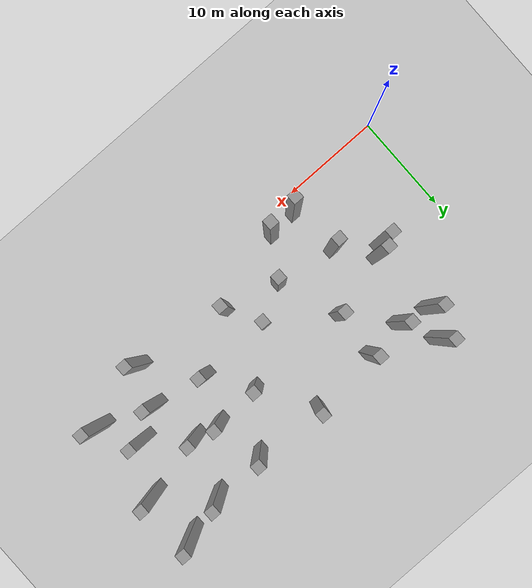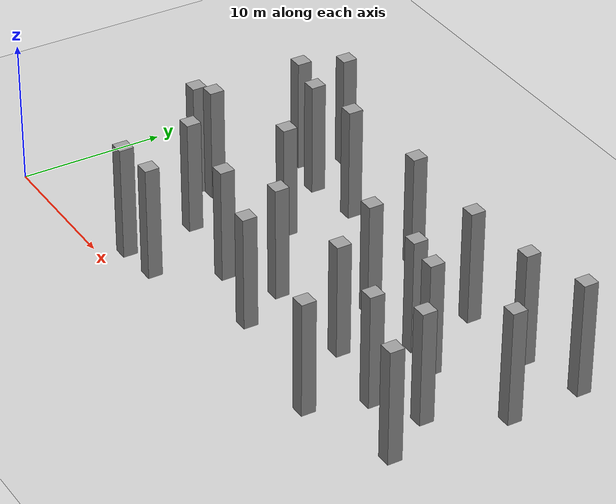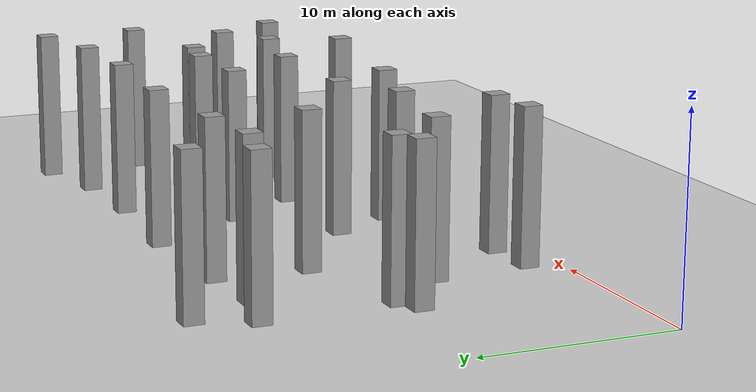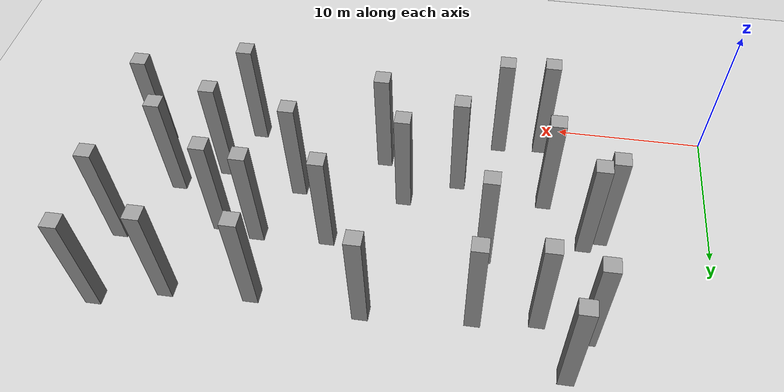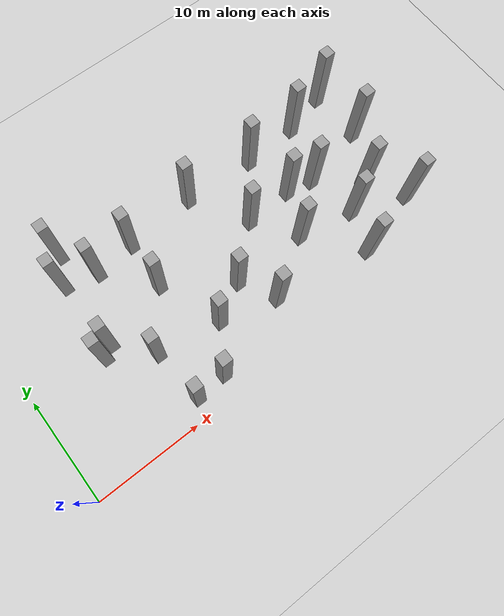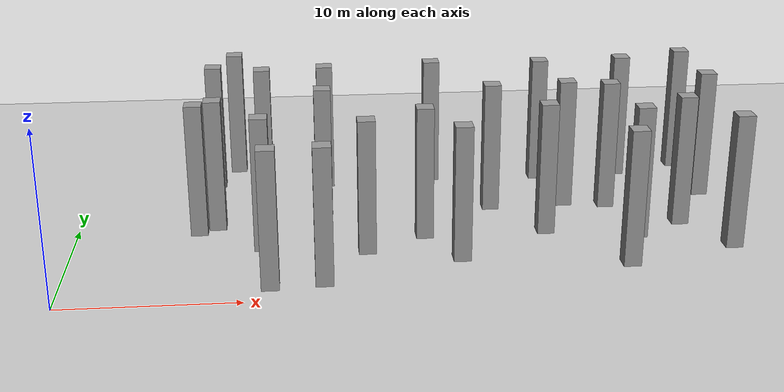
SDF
<sdf version="1.7">
 <world name="default">
  <model name="ground_plane">
   <static>1</static>
   <link name="link">
    <collision name="collision">
     <geometry><plane><normal>0 0 1</normal><size>100 100</size></plane></geometry>
     <surface>
      <contact><collide_bitmask>65535</collide_bitmask></contact>
      <friction><ode><mu>100</mu><mu2>50</mu2></ode></friction>
     </surface>
    </collision>
    <visual name="visual">
     <cast_shadows>0</cast_shadows>
     <geometry><plane><normal>0 0 1</normal><size>100 100</size></plane></geometry>
     <material>
      <script><uri>file://media/materials/scripts/gazebo.material</uri><name>Gazebo/Grey</name></script>
     </material>
    </visual>
   </link>
  </model>
  <model name="unit_box_static61">
   <link name="link">
    <inertial>
     <mass>1</mass>
     <inertia>
      <ixx>0.166667</ixx>
      <ixy>0</ixy>
      <ixz>0</ixz>
      <iyy>0.166667</iyy>
      <iyz>0</iyz>
      <izz>0.166667</izz>
     </inertia>
    </inertial>
    <visual name="visual">
     <geometry><box><size>1 1 8</size></box></geometry>
     <material>
      <script><name>Gazebo/Grey</name><uri>file://media/materials/scripts/gazebo.material</uri></script>
      <shader type="pixel"/>
     </material>
    </visual>
    <collision name="collision">
     <geometry><box><size>1 1 8</size></box></geometry>
     <surface>
      <friction>
       <ode><mu>1</mu><mu2>1</mu2><fdir1>0 0 0</fdir1><slip1>0</slip1><slip2>0</slip2></ode>
       <torsional>
        <coefficient>1</coefficient>
        <patch_radius>0</patch_radius>
        <surface_radius>0</surface_radius>
        <use_patch_radius>1</use_patch_radius>
        <ode><slip>0</slip></ode>
       </torsional>
      </friction>
      <bounce><restitution_coefficient>0</restitution_coefficient><threshold>1e+06</threshold></bounce>
      <contact>
       <collide_without_contact>0</collide_without_contact>
       <collide_without_contact_bitmask>1</collide_without_contact_bitmask>
       <collide_bitmask>1</collide_bitmask>
       <ode>
        <soft_cfm>0</soft_cfm>
        <soft_erp>0.2</soft_erp>
        <kp>1e+13</kp>
        <kd>1</kd>
        <max_vel>0.01</max_vel>
        <min_depth>0</min_depth>
       </ode>
       <bullet>
        <split_impulse>1</split_impulse>
        <split_impulse_penetration_threshold>-0.01</split_impulse_penetration_threshold>
        <soft_cfm>0</soft_cfm>
        <soft_erp>0.2</soft_erp>
        <kp>1e+13</kp>
        <kd>1</kd>
       </bullet>
      </contact>
     </surface>
    </collision>
   </link>
   <static>1</static>
   <pose>32.8914 6.80338 4 0 -0 0</pose>
  </model>
  <model name="unit_box_static73">
   <link name="link">
    <inertial>
     <mass>1</mass>
     <inertia>
      <ixx>0.166667</ixx>
      <ixy>0</ixy>
      <ixz>0</ixz>
      <iyy>0.166667</iyy>
      <iyz>0</iyz>
      <izz>0.166667</izz>
     </inertia>
    </inertial>
    <visual name="visual">
     <geometry><box><size>1 1 8</size></box></geometry>
     <material>
      <script><name>Gazebo/Grey</name><uri>file://media/materials/scripts/gazebo.material</uri></script>
      <shader type="pixel"/>
     </material>
    </visual>
    <collision name="collision">
     <geometry><box><size>1 1 8</size></box></geometry>
     <surface>
      <friction>
       <ode><mu>1</mu><mu2>1</mu2><fdir1>0 0 0</fdir1><slip1>0</slip1><slip2>0</slip2></ode>
       <torsional>
        <coefficient>1</coefficient>
        <patch_radius>0</patch_radius>
        <surface_radius>0</surface_radius>
        <use_patch_radius>1</use_patch_radius>
        <ode><slip>0</slip></ode>
       </torsional>
      </friction>
      <bounce><restitution_coefficient>0</restitution_coefficient><threshold>1e+06</threshold></bounce>
      <contact>
       <collide_without_contact>0</collide_without_contact>
       <collide_without_contact_bitmask>1</collide_without_contact_bitmask>
       <collide_bitmask>1</collide_bitmask>
       <ode>
        <soft_cfm>0</soft_cfm>
        <soft_erp>0.2</soft_erp>
        <kp>1e+13</kp>
        <kd>1</kd>
        <max_vel>0.01</max_vel>
        <min_depth>0</min_depth>
       </ode>
       <bullet>
        <split_impulse>1</split_impulse>
        <split_impulse_penetration_threshold>-0.01</split_impulse_penetration_threshold>
        <soft_cfm>0</soft_cfm>
        <soft_erp>0.2</soft_erp>
        <kp>1e+13</kp>
        <kd>1</kd>
       </bullet>
      </contact>
     </surface>
    </collision>
   </link>
   <static>1</static>
   <pose>14.3034 1.95691 4 0 -0 0</pose>
  </model>
  <model name="unit_box_static79">
   <link name="link">
    <inertial>
     <mass>1</mass>
     <inertia>
      <ixx>0.166667</ixx>
      <ixy>0</ixy>
      <ixz>0</ixz>
      <iyy>0.166667</iyy>
      <iyz>0</iyz>
      <izz>0.166667</izz>
     </inertia>
    </inertial>
    <visual name="visual">
     <geometry><box><size>1 1 8</size></box></geometry>
     <material>
      <script><name>Gazebo/Grey</name><uri>file://media/materials/scripts/gazebo.material</uri></script>
      <shader type="pixel"/>
     </material>
    </visual>
    <collision name="collision">
     <geometry><box><size>1 1 8</size></box></geometry>
     <surface>
      <friction>
       <ode><mu>1</mu><mu2>1</mu2><fdir1>0 0 0</fdir1><slip1>0</slip1><slip2>0</slip2></ode>
       <torsional>
        <coefficient>1</coefficient>
        <patch_radius>0</patch_radius>
        <surface_radius>0</surface_radius>
        <use_patch_radius>1</use_patch_radius>
        <ode><slip>0</slip></ode>
       </torsional>
      </friction>
      <bounce><restitution_coefficient>0</restitution_coefficient><threshold>1e+06</threshold></bounce>
      <contact>
       <collide_without_contact>0</collide_without_contact>
       <collide_without_contact_bitmask>1</collide_without_contact_bitmask>
       <collide_bitmask>1</collide_bitmask>
       <ode>
        <soft_cfm>0</soft_cfm>
        <soft_erp>0.2</soft_erp>
        <kp>1e+13</kp>
        <kd>1</kd>
        <max_vel>0.01</max_vel>
        <min_depth>0</min_depth>
       </ode>
       <bullet>
        <split_impulse>1</split_impulse>
        <split_impulse_penetration_threshold>-0.01</split_impulse_penetration_threshold>
        <soft_cfm>0</soft_cfm>
        <soft_erp>0.2</soft_erp>
        <kp>1e+13</kp>
        <kd>1</kd>
       </bullet>
      </contact>
     </surface>
    </collision>
   </link>
   <static>1</static>
   <pose>38.2334 18.1428 4 0 -0 0</pose>
  </model>
  <model name="unit_box_static85">
   <link name="link">
    <inertial>
     <mass>1</mass>
     <inertia>
      <ixx>0.166667</ixx>
      <ixy>0</ixy>
      <ixz>0</ixz>
      <iyy>0.166667</iyy>
      <iyz>0</iyz>
      <izz>0.166667</izz>
     </inertia>
    </inertial>
    <visual name="visual">
     <geometry><box><size>1 1 8</size></box></geometry>
     <material>
      <script><name>Gazebo/Grey</name><uri>file://media/materials/scripts/gazebo.material</uri></script>
      <shader type="pixel"/>
     </material>
    </visual>
    <collision name="collision">
     <geometry><box><size>1 1 8</size></box></geometry>
     <surface>
      <friction>
       <ode><mu>1</mu><mu2>1</mu2><fdir1>0 0 0</fdir1><slip1>0</slip1><slip2>0</slip2></ode>
       <torsional>
        <coefficient>1</coefficient>
        <patch_radius>0</patch_radius>
        <surface_radius>0</surface_radius>
        <use_patch_radius>1</use_patch_radius>
        <ode><slip>0</slip></ode>
       </torsional>
      </friction>
      <bounce><restitution_coefficient>0</restitution_coefficient><threshold>1e+06</threshold></bounce>
      <contact>
       <collide_without_contact>0</collide_without_contact>
       <collide_without_contact_bitmask>1</collide_without_contact_bitmask>
       <collide_bitmask>1</collide_bitmask>
       <ode>
        <soft_cfm>0</soft_cfm>
        <soft_erp>0.2</soft_erp>
        <kp>1e+13</kp>
        <kd>1</kd>
        <max_vel>0.01</max_vel>
        <min_depth>0</min_depth>
       </ode>
       <bullet>
        <split_impulse>1</split_impulse>
        <split_impulse_penetration_threshold>-0.01</split_impulse_penetration_threshold>
        <soft_cfm>0</soft_cfm>
        <soft_erp>0.2</soft_erp>
        <kp>1e+13</kp>
        <kd>1</kd>
       </bullet>
      </contact>
     </surface>
    </collision>
   </link>
   <static>1</static>
   <pose>10.9016 16.0346 4 0 -0 0</pose>
  </model>
  <model name="unit_box_static91">
   <link name="link">
    <inertial>
     <mass>1</mass>
     <inertia>
      <ixx>0.166667</ixx>
      <ixy>0</ixy>
      <ixz>0</ixz>
      <iyy>0.166667</iyy>
      <iyz>0</iyz>
      <izz>0.166667</izz>
     </inertia>
    </inertial>
    <visual name="visual">
     <geometry><box><size>1 1 8</size></box></geometry>
     <material>
      <script><name>Gazebo/Grey</name><uri>file://media/materials/scripts/gazebo.material</uri></script>
      <shader type="pixel"/>
     </material>
    </visual>
    <collision name="collision">
     <geometry><box><size>1 1 8</size></box></geometry>
     <surface>
      <friction>
       <ode><mu>1</mu><mu2>1</mu2><fdir1>0 0 0</fdir1><slip1>0</slip1><slip2>0</slip2></ode>
       <torsional>
        <coefficient>1</coefficient>
        <patch_radius>0</patch_radius>
        <surface_radius>0</surface_radius>
        <use_patch_radius>1</use_patch_radius>
        <ode><slip>0</slip></ode>
       </torsional>
      </friction>
      <bounce><restitution_coefficient>0</restitution_coefficient><threshold>1e+06</threshold></bounce>
      <contact>
       <collide_without_contact>0</collide_without_contact>
       <collide_without_contact_bitmask>1</collide_without_contact_bitmask>
       <collide_bitmask>1</collide_bitmask>
       <ode>
        <soft_cfm>0</soft_cfm>
        <soft_erp>0.2</soft_erp>
        <kp>1e+13</kp>
        <kd>1</kd>
        <max_vel>0.01</max_vel>
        <min_depth>0</min_depth>
       </ode>
       <bullet>
        <split_impulse>1</split_impulse>
        <split_impulse_penetration_threshold>-0.01</split_impulse_penetration_threshold>
        <soft_cfm>0</soft_cfm>
        <soft_erp>0.2</soft_erp>
        <kp>1e+13</kp>
        <kd>1</kd>
       </bullet>
      </contact>
     </surface>
    </collision>
   </link>
   <static>1</static>
   <pose>11.3689 1.71268 4 0 -0 0</pose>
  </model>
  <model name="unit_box_static94">
   <link name="link">
    <inertial>
     <mass>1</mass>
     <inertia>
      <ixx>0.166667</ixx>
      <ixy>0</ixy>
      <ixz>0</ixz>
      <iyy>0.166667</iyy>
      <iyz>0</iyz>
      <izz>0.166667</izz>
     </inertia>
    </inertial>
    <visual name="visual">
     <geometry><box><size>1 1 8</size></box></geometry>
     <material>
      <script><name>Gazebo/Grey</name><uri>file://media/materials/scripts/gazebo.material</uri></script>
      <shader type="pixel"/>
     </material>
    </visual>
    <collision name="collision">
     <geometry><box><size>1 1 8</size></box></geometry>
     <surface>
      <friction>
       <ode><mu>1</mu><mu2>1</mu2><fdir1>0 0 0</fdir1><slip1>0</slip1><slip2>0</slip2></ode>
       <torsional>
        <coefficient>1</coefficient>
        <patch_radius>0</patch_radius>
        <surface_radius>0</surface_radius>
        <use_patch_radius>1</use_patch_radius>
        <ode><slip>0</slip></ode>
       </torsional>
      </friction>
      <bounce><restitution_coefficient>0</restitution_coefficient><threshold>1e+06</threshold></bounce>
      <contact>
       <collide_without_contact>0</collide_without_contact>
       <collide_without_contact_bitmask>1</collide_without_contact_bitmask>
       <collide_bitmask>1</collide_bitmask>
       <ode>
        <soft_cfm>0</soft_cfm>
        <soft_erp>0.2</soft_erp>
        <kp>1e+13</kp>
        <kd>1</kd>
        <max_vel>0.01</max_vel>
        <min_depth>0</min_depth>
       </ode>
       <bullet>
        <split_impulse>1</split_impulse>
        <split_impulse_penetration_threshold>-0.01</split_impulse_penetration_threshold>
        <soft_cfm>0</soft_cfm>
        <soft_erp>0.2</soft_erp>
        <kp>1e+13</kp>
        <kd>1</kd>
       </bullet>
      </contact>
     </surface>
    </collision>
   </link>
   <static>1</static>
   <pose>27.5313 7.8301 4 0 -0 0</pose>
  </model>
  <model name="unit_box_static96">
   <link name="link">
    <inertial>
     <mass>1</mass>
     <inertia>
      <ixx>0.166667</ixx>
      <ixy>0</ixy>
      <ixz>0</ixz>
      <iyy>0.166667</iyy>
      <iyz>0</iyz>
      <izz>0.166667</izz>
     </inertia>
    </inertial>
    <visual name="visual">
     <geometry><box><size>1 1 8</size></box></geometry>
     <material>
      <script><name>Gazebo/Grey</name><uri>file://media/materials/scripts/gazebo.material</uri></script>
      <shader type="pixel"/>
     </material>
    </visual>
    <collision name="collision">
     <geometry><box><size>1 1 8</size></box></geometry>
     <surface>
      <friction>
       <ode><mu>1</mu><mu2>1</mu2><fdir1>0 0 0</fdir1><slip1>0</slip1><slip2>0</slip2></ode>
       <torsional>
        <coefficient>1</coefficient>
        <patch_radius>0</patch_radius>
        <surface_radius>0</surface_radius>
        <use_patch_radius>1</use_patch_radius>
        <ode><slip>0</slip></ode>
       </torsional>
      </friction>
      <bounce><restitution_coefficient>0</restitution_coefficient><threshold>1e+06</threshold></bounce>
      <contact>
       <collide_without_contact>0</collide_without_contact>
       <collide_without_contact_bitmask>1</collide_without_contact_bitmask>
       <collide_bitmask>1</collide_bitmask>
       <ode>
        <soft_cfm>0</soft_cfm>
        <soft_erp>0.2</soft_erp>
        <kp>1e+13</kp>
        <kd>1</kd>
        <max_vel>0.01</max_vel>
        <min_depth>0</min_depth>
       </ode>
       <bullet>
        <split_impulse>1</split_impulse>
        <split_impulse_penetration_threshold>-0.01</split_impulse_penetration_threshold>
        <soft_cfm>0</soft_cfm>
        <soft_erp>0.2</soft_erp>
        <kp>1e+13</kp>
        <kd>1</kd>
       </bullet>
      </contact>
     </surface>
    </collision>
   </link>
   <static>1</static>
   <pose>9.07796 19.543 4 0 -0 0</pose>
  </model>
  <model name="unit_box_static102">
   <link name="link">
    <inertial>
     <mass>1</mass>
     <inertia>
      <ixx>0.166667</ixx>
      <ixy>0</ixy>
      <ixz>0</ixz>
      <iyy>0.166667</iyy>
      <iyz>0</iyz>
      <izz>0.166667</izz>
     </inertia>
    </inertial>
    <visual name="visual">
     <geometry><box><size>1 1 8</size></box></geometry>
     <material>
      <script><name>Gazebo/Grey</name><uri>file://media/materials/scripts/gazebo.material</uri></script>
      <shader type="pixel"/>
     </material>
    </visual>
    <collision name="collision">
     <geometry><box><size>1 1 8</size></box></geometry>
     <surface>
      <friction>
       <ode><mu>1</mu><mu2>1</mu2><fdir1>0 0 0</fdir1><slip1>0</slip1><slip2>0</slip2></ode>
       <torsional>
        <coefficient>1</coefficient>
        <patch_radius>0</patch_radius>
        <surface_radius>0</surface_radius>
        <use_patch_radius>1</use_patch_radius>
        <ode><slip>0</slip></ode>
       </torsional>
      </friction>
      <bounce><restitution_coefficient>0</restitution_coefficient><threshold>1e+06</threshold></bounce>
      <contact>
       <collide_without_contact>0</collide_without_contact>
       <collide_without_contact_bitmask>1</collide_without_contact_bitmask>
       <collide_bitmask>1</collide_bitmask>
       <ode>
        <soft_cfm>0</soft_cfm>
        <soft_erp>0.2</soft_erp>
        <kp>1e+13</kp>
        <kd>1</kd>
        <max_vel>0.01</max_vel>
        <min_depth>0</min_depth>
       </ode>
       <bullet>
        <split_impulse>1</split_impulse>
        <split_impulse_penetration_threshold>-0.01</split_impulse_penetration_threshold>
        <soft_cfm>0</soft_cfm>
        <soft_erp>0.2</soft_erp>
        <kp>1e+13</kp>
        <kd>1</kd>
       </bullet>
      </contact>
     </surface>
    </collision>
   </link>
   <static>1</static>
   <pose>22.1272 4.4509 4 0 -0 0</pose>
  </model>
  <model name="unit_box_static105">
   <link name="link">
    <inertial>
     <mass>1</mass>
     <inertia>
      <ixx>0.166667</ixx>
      <ixy>0</ixy>
      <ixz>0</ixz>
      <iyy>0.166667</iyy>
      <iyz>0</iyz>
      <izz>0.166667</izz>
     </inertia>
    </inertial>
    <visual name="visual">
     <geometry><box><size>1 1 8</size></box></geometry>
     <material>
      <script><name>Gazebo/Grey</name><uri>file://media/materials/scripts/gazebo.material</uri></script>
      <shader type="pixel"/>
     </material>
    </visual>
    <collision name="collision">
     <geometry><box><size>1 1 8</size></box></geometry>
     <surface>
      <friction>
       <ode><mu>1</mu><mu2>1</mu2><fdir1>0 0 0</fdir1><slip1>0</slip1><slip2>0</slip2></ode>
       <torsional>
        <coefficient>1</coefficient>
        <patch_radius>0</patch_radius>
        <surface_radius>0</surface_radius>
        <use_patch_radius>1</use_patch_radius>
        <ode><slip>0</slip></ode>
       </torsional>
      </friction>
      <bounce><restitution_coefficient>0</restitution_coefficient><threshold>1e+06</threshold></bounce>
      <contact>
       <collide_without_contact>0</collide_without_contact>
       <collide_without_contact_bitmask>1</collide_without_contact_bitmask>
       <collide_bitmask>1</collide_bitmask>
       <ode>
        <soft_cfm>0</soft_cfm>
        <soft_erp>0.2</soft_erp>
        <kp>1e+13</kp>
        <kd>1</kd>
        <max_vel>0.01</max_vel>
        <min_depth>0</min_depth>
       </ode>
       <bullet>
        <split_impulse>1</split_impulse>
        <split_impulse_penetration_threshold>-0.01</split_impulse_penetration_threshold>
        <soft_cfm>0</soft_cfm>
        <soft_erp>0.2</soft_erp>
        <kp>1e+13</kp>
        <kd>1</kd>
       </bullet>
      </contact>
     </surface>
    </collision>
   </link>
   <static>1</static>
   <pose>7.12525 9.28684 4 0 -0 0</pose>
  </model>
  <model name="unit_box_static106">
   <link name="link">
    <inertial>
     <mass>1</mass>
     <inertia>
      <ixx>0.166667</ixx>
      <ixy>0</ixy>
      <ixz>0</ixz>
      <iyy>0.166667</iyy>
      <iyz>0</iyz>
      <izz>0.166667</izz>
     </inertia>
    </inertial>
    <visual name="visual">
     <geometry><box><size>1 1 8</size></box></geometry>
     <material>
      <script><name>Gazebo/Grey</name><uri>file://media/materials/scripts/gazebo.material</uri></script>
      <shader type="pixel"/>
     </material>
    </visual>
    <collision name="collision">
     <geometry><box><size>1 1 8</size></box></geometry>
     <surface>
      <friction>
       <ode><mu>1</mu><mu2>1</mu2><fdir1>0 0 0</fdir1><slip1>0</slip1><slip2>0</slip2></ode>
       <torsional>
        <coefficient>1</coefficient>
        <patch_radius>0</patch_radius>
        <surface_radius>0</surface_radius>
        <use_patch_radius>1</use_patch_radius>
        <ode><slip>0</slip></ode>
       </torsional>
      </friction>
      <bounce><restitution_coefficient>0</restitution_coefficient><threshold>1e+06</threshold></bounce>
      <contact>
       <collide_without_contact>0</collide_without_contact>
       <collide_without_contact_bitmask>1</collide_without_contact_bitmask>
       <collide_bitmask>1</collide_bitmask>
       <ode>
        <soft_cfm>0</soft_cfm>
        <soft_erp>0.2</soft_erp>
        <kp>1e+13</kp>
        <kd>1</kd>
        <max_vel>0.01</max_vel>
        <min_depth>0</min_depth>
       </ode>
       <bullet>
        <split_impulse>1</split_impulse>
        <split_impulse_penetration_threshold>-0.01</split_impulse_penetration_threshold>
        <soft_cfm>0</soft_cfm>
        <soft_erp>0.2</soft_erp>
        <kp>1e+13</kp>
        <kd>1</kd>
       </bullet>
      </contact>
     </surface>
    </collision>
   </link>
   <static>1</static>
   <pose>21.6354 16.9899 4 0 -0 0</pose>
  </model>
  <model name="unit_box_static126">
   <link name="link">
    <inertial>
     <mass>1</mass>
     <inertia>
      <ixx>0.166667</ixx>
      <ixy>0</ixy>
      <ixz>0</ixz>
      <iyy>0.166667</iyy>
      <iyz>0</iyz>
      <izz>0.166667</izz>
     </inertia>
    </inertial>
    <visual name="visual">
     <geometry><box><size>1 1 8</size></box></geometry>
     <material>
      <script><name>Gazebo/Grey</name><uri>file://media/materials/scripts/gazebo.material</uri></script>
      <shader type="pixel"/>
     </material>
    </visual>
    <collision name="collision">
     <geometry><box><size>1 1 8</size></box></geometry>
     <surface>
      <friction>
       <ode><mu>1</mu><mu2>1</mu2><fdir1>0 0 0</fdir1><slip1>0</slip1><slip2>0</slip2></ode>
       <torsional>
        <coefficient>1</coefficient>
        <patch_radius>0</patch_radius>
        <surface_radius>0</surface_radius>
        <use_patch_radius>1</use_patch_radius>
        <ode><slip>0</slip></ode>
       </torsional>
      </friction>
      <bounce><restitution_coefficient>0</restitution_coefficient><threshold>1e+06</threshold></bounce>
      <contact>
       <collide_without_contact>0</collide_without_contact>
       <collide_without_contact_bitmask>1</collide_without_contact_bitmask>
       <collide_bitmask>1</collide_bitmask>
       <ode>
        <soft_cfm>0</soft_cfm>
        <soft_erp>0.2</soft_erp>
        <kp>1e+13</kp>
        <kd>1</kd>
        <max_vel>0.01</max_vel>
        <min_depth>0</min_depth>
       </ode>
       <bullet>
        <split_impulse>1</split_impulse>
        <split_impulse_penetration_threshold>-0.01</split_impulse_penetration_threshold>
        <soft_cfm>0</soft_cfm>
        <soft_erp>0.2</soft_erp>
        <kp>1e+13</kp>
        <kd>1</kd>
       </bullet>
      </contact>
     </surface>
    </collision>
   </link>
   <static>1</static>
   <pose>20.3215 7.76346 4 0 -0 0</pose>
  </model>
  <model name="unit_box_static127">
   <link name="link">
    <inertial>
     <mass>1</mass>
     <inertia>
      <ixx>0.166667</ixx>
      <ixy>0</ixy>
      <ixz>0</ixz>
      <iyy>0.166667</iyy>
      <iyz>0</iyz>
      <izz>0.166667</izz>
     </inertia>
    </inertial>
    <visual name="visual">
     <geometry><box><size>1 1 8</size></box></geometry>
     <material>
      <script><name>Gazebo/Grey</name><uri>file://media/materials/scripts/gazebo.material</uri></script>
      <shader type="pixel"/>
     </material>
    </visual>
    <collision name="collision">
     <geometry><box><size>1 1 8</size></box></geometry>
     <surface>
      <friction>
       <ode><mu>1</mu><mu2>1</mu2><fdir1>0 0 0</fdir1><slip1>0</slip1><slip2>0</slip2></ode>
       <torsional>
        <coefficient>1</coefficient>
        <patch_radius>0</patch_radius>
        <surface_radius>0</surface_radius>
        <use_patch_radius>1</use_patch_radius>
        <ode><slip>0</slip></ode>
       </torsional>
      </friction>
      <bounce><restitution_coefficient>0</restitution_coefficient><threshold>1e+06</threshold></bounce>
      <contact>
       <collide_without_contact>0</collide_without_contact>
       <collide_without_contact_bitmask>1</collide_without_contact_bitmask>
       <collide_bitmask>1</collide_bitmask>
       <ode>
        <soft_cfm>0</soft_cfm>
        <soft_erp>0.2</soft_erp>
        <kp>1e+13</kp>
        <kd>1</kd>
        <max_vel>0.01</max_vel>
        <min_depth>0</min_depth>
       </ode>
       <bullet>
        <split_impulse>1</split_impulse>
        <split_impulse_penetration_threshold>-0.01</split_impulse_penetration_threshold>
        <soft_cfm>0</soft_cfm>
        <soft_erp>0.2</soft_erp>
        <kp>1e+13</kp>
        <kd>1</kd>
       </bullet>
      </contact>
     </surface>
    </collision>
   </link>
   <static>1</static>
   <pose>8.17156 9.99618 4 0 -0 0</pose>
  </model>
  <model name="unit_box_static132">
   <link name="link">
    <inertial>
     <mass>1</mass>
     <inertia>
      <ixx>0.166667</ixx>
      <ixy>0</ixy>
      <ixz>0</ixz>
      <iyy>0.166667</iyy>
      <iyz>0</iyz>
      <izz>0.166667</izz>
     </inertia>
    </inertial>
    <visual name="visual">
     <geometry><box><size>1 1 8</size></box></geometry>
     <material>
      <script><name>Gazebo/Grey</name><uri>file://media/materials/scripts/gazebo.material</uri></script>
      <shader type="pixel"/>
     </material>
    </visual>
    <collision name="collision">
     <geometry><box><size>1 1 8</size></box></geometry>
     <surface>
      <friction>
       <ode><mu>1</mu><mu2>1</mu2><fdir1>0 0 0</fdir1><slip1>0</slip1><slip2>0</slip2></ode>
       <torsional>
        <coefficient>1</coefficient>
        <patch_radius>0</patch_radius>
        <surface_radius>0</surface_radius>
        <use_patch_radius>1</use_patch_radius>
        <ode><slip>0</slip></ode>
       </torsional>
      </friction>
      <bounce><restitution_coefficient>0</restitution_coefficient><threshold>1e+06</threshold></bounce>
      <contact>
       <collide_without_contact>0</collide_without_contact>
       <collide_without_contact_bitmask>1</collide_without_contact_bitmask>
       <collide_bitmask>1</collide_bitmask>
       <ode>
        <soft_cfm>0</soft_cfm>
        <soft_erp>0.2</soft_erp>
        <kp>1e+13</kp>
        <kd>1</kd>
        <max_vel>0.01</max_vel>
        <min_depth>0</min_depth>
       </ode>
       <bullet>
        <split_impulse>1</split_impulse>
        <split_impulse_penetration_threshold>-0.01</split_impulse_penetration_threshold>
        <soft_cfm>0</soft_cfm>
        <soft_erp>0.2</soft_erp>
        <kp>1e+13</kp>
        <kd>1</kd>
       </bullet>
      </contact>
     </surface>
    </collision>
   </link>
   <static>1</static>
   <pose>7.8496 16.7908 4 0 -0 0</pose>
  </model>
  <model name="unit_box_static136">
   <link name="link">
    <inertial>
     <mass>1</mass>
     <inertia>
      <ixx>0.166667</ixx>
      <ixy>0</ixy>
      <ixz>0</ixz>
      <iyy>0.166667</iyy>
      <iyz>0</iyz>
      <izz>0.166667</izz>
     </inertia>
    </inertial>
    <visual name="visual">
     <geometry><box><size>1 1 8</size></box></geometry>
     <material>
      <script><name>Gazebo/Grey</name><uri>file://media/materials/scripts/gazebo.material</uri></script>
      <shader type="pixel"/>
     </material>
    </visual>
    <collision name="collision">
     <geometry><box><size>1 1 8</size></box></geometry>
     <surface>
      <friction>
       <ode><mu>1</mu><mu2>1</mu2><fdir1>0 0 0</fdir1><slip1>0</slip1><slip2>0</slip2></ode>
       <torsional>
        <coefficient>1</coefficient>
        <patch_radius>0</patch_radius>
        <surface_radius>0</surface_radius>
        <use_patch_radius>1</use_patch_radius>
        <ode><slip>0</slip></ode>
       </torsional>
      </friction>
      <bounce><restitution_coefficient>0</restitution_coefficient><threshold>1e+06</threshold></bounce>
      <contact>
       <collide_without_contact>0</collide_without_contact>
       <collide_without_contact_bitmask>1</collide_without_contact_bitmask>
       <collide_bitmask>1</collide_bitmask>
       <ode>
        <soft_cfm>0</soft_cfm>
        <soft_erp>0.2</soft_erp>
        <kp>1e+13</kp>
        <kd>1</kd>
        <max_vel>0.01</max_vel>
        <min_depth>0</min_depth>
       </ode>
       <bullet>
        <split_impulse>1</split_impulse>
        <split_impulse_penetration_threshold>-0.01</split_impulse_penetration_threshold>
        <soft_cfm>0</soft_cfm>
        <soft_erp>0.2</soft_erp>
        <kp>1e+13</kp>
        <kd>1</kd>
       </bullet>
      </contact>
     </surface>
    </collision>
   </link>
   <static>1</static>
   <pose>28.5947 16.6836 4 0 -0 0</pose>
  </model>
  <model name="unit_box_static141">
   <link name="link">
    <inertial>
     <mass>1</mass>
     <inertia>
      <ixx>0.166667</ixx>
      <ixy>0</ixy>
      <ixz>0</ixz>
      <iyy>0.166667</iyy>
      <iyz>0</iyz>
      <izz>0.166667</izz>
     </inertia>
    </inertial>
    <visual name="visual">
     <geometry><box><size>1 1 8</size></box></geometry>
     <material>
      <script><name>Gazebo/Grey</name><uri>file://media/materials/scripts/gazebo.material</uri></script>
      <shader type="pixel"/>
     </material>
    </visual>
    <collision name="collision">
     <geometry><box><size>1 1 8</size></box></geometry>
     <surface>
      <friction>
       <ode><mu>1</mu><mu2>1</mu2><fdir1>0 0 0</fdir1><slip1>0</slip1><slip2>0</slip2></ode>
       <torsional>
        <coefficient>1</coefficient>
        <patch_radius>0</patch_radius>
        <surface_radius>0</surface_radius>
        <use_patch_radius>1</use_patch_radius>
        <ode><slip>0</slip></ode>
       </torsional>
      </friction>
      <bounce><restitution_coefficient>0</restitution_coefficient><threshold>1e+06</threshold></bounce>
      <contact>
       <collide_without_contact>0</collide_without_contact>
       <collide_without_contact_bitmask>1</collide_without_contact_bitmask>
       <collide_bitmask>1</collide_bitmask>
       <ode>
        <soft_cfm>0</soft_cfm>
        <soft_erp>0.2</soft_erp>
        <kp>1e+13</kp>
        <kd>1</kd>
        <max_vel>0.01</max_vel>
        <min_depth>0</min_depth>
       </ode>
       <bullet>
        <split_impulse>1</split_impulse>
        <split_impulse_penetration_threshold>-0.01</split_impulse_penetration_threshold>
        <soft_cfm>0</soft_cfm>
        <soft_erp>0.2</soft_erp>
        <kp>1e+13</kp>
        <kd>1</kd>
       </bullet>
      </contact>
     </surface>
    </collision>
   </link>
   <static>1</static>
   <pose>24.8113 11.7639 4 0 -0 0</pose>
  </model>
  <model name="unit_box_static148">
   <link name="link">
    <inertial>
     <mass>1</mass>
     <inertia>
      <ixx>0.166667</ixx>
      <ixy>0</ixy>
      <ixz>0</ixz>
      <iyy>0.166667</iyy>
      <iyz>0</iyz>
      <izz>0.166667</izz>
     </inertia>
    </inertial>
    <visual name="visual">
     <geometry><box><size>1 1 8</size></box></geometry>
     <material>
      <script><name>Gazebo/Grey</name><uri>file://media/materials/scripts/gazebo.material</uri></script>
      <shader type="pixel"/>
     </material>
    </visual>
    <collision name="collision">
     <geometry><box><size>1 1 8</size></box></geometry>
     <surface>
      <friction>
       <ode><mu>1</mu><mu2>1</mu2><fdir1>0 0 0</fdir1><slip1>0</slip1><slip2>0</slip2></ode>
       <torsional>
        <coefficient>1</coefficient>
        <patch_radius>0</patch_radius>
        <surface_radius>0</surface_radius>
        <use_patch_radius>1</use_patch_radius>
        <ode><slip>0</slip></ode>
       </torsional>
      </friction>
      <bounce><restitution_coefficient>0</restitution_coefficient><threshold>1e+06</threshold></bounce>
      <contact>
       <collide_without_contact>0</collide_without_contact>
       <collide_without_contact_bitmask>1</collide_without_contact_bitmask>
       <collide_bitmask>1</collide_bitmask>
       <ode>
        <soft_cfm>0</soft_cfm>
        <soft_erp>0.2</soft_erp>
        <kp>1e+13</kp>
        <kd>1</kd>
        <max_vel>0.01</max_vel>
        <min_depth>0</min_depth>
       </ode>
       <bullet>
        <split_impulse>1</split_impulse>
        <split_impulse_penetration_threshold>-0.01</split_impulse_penetration_threshold>
        <soft_cfm>0</soft_cfm>
        <soft_erp>0.2</soft_erp>
        <kp>1e+13</kp>
        <kd>1</kd>
       </bullet>
      </contact>
     </surface>
    </collision>
   </link>
   <static>1</static>
   <pose>10.9 6.78003 4 0 -0 0</pose>
  </model>
  <model name="unit_box_static164">
   <link name="link">
    <inertial>
     <mass>1</mass>
     <inertia>
      <ixx>0.166667</ixx>
      <ixy>0</ixy>
      <ixz>0</ixz>
      <iyy>0.166667</iyy>
      <iyz>0</iyz>
      <izz>0.166667</izz>
     </inertia>
    </inertial>
    <visual name="visual">
     <geometry><box><size>1 1 8</size></box></geometry>
     <material>
      <script><name>Gazebo/Grey</name><uri>file://media/materials/scripts/gazebo.material</uri></script>
      <shader type="pixel"/>
     </material>
    </visual>
    <collision name="collision">
     <geometry><box><size>1 1 8</size></box></geometry>
     <surface>
      <friction>
       <ode><mu>1</mu><mu2>1</mu2><fdir1>0 0 0</fdir1><slip1>0</slip1><slip2>0</slip2></ode>
       <torsional>
        <coefficient>1</coefficient>
        <patch_radius>0</patch_radius>
        <surface_radius>0</surface_radius>
        <use_patch_radius>1</use_patch_radius>
        <ode><slip>0</slip></ode>
       </torsional>
      </friction>
      <bounce><restitution_coefficient>0</restitution_coefficient><threshold>1e+06</threshold></bounce>
      <contact>
       <collide_without_contact>0</collide_without_contact>
       <collide_without_contact_bitmask>1</collide_without_contact_bitmask>
       <collide_bitmask>1</collide_bitmask>
       <ode>
        <soft_cfm>0</soft_cfm>
        <soft_erp>0.2</soft_erp>
        <kp>1e+13</kp>
        <kd>1</kd>
        <max_vel>0.01</max_vel>
        <min_depth>0</min_depth>
       </ode>
       <bullet>
        <split_impulse>1</split_impulse>
        <split_impulse_penetration_threshold>-0.01</split_impulse_penetration_threshold>
        <soft_cfm>0</soft_cfm>
        <soft_erp>0.2</soft_erp>
        <kp>1e+13</kp>
        <kd>1</kd>
       </bullet>
      </contact>
     </surface>
    </collision>
   </link>
   <static>1</static>
   <pose>14.5547 11.744 4 0 -0 0</pose>
  </model>
  <model name="unit_box_static178">
   <link name="link">
    <inertial>
     <mass>1</mass>
     <inertia>
      <ixx>0.166667</ixx>
      <ixy>0</ixy>
      <ixz>0</ixz>
      <iyy>0.166667</iyy>
      <iyz>0</iyz>
      <izz>0.166667</izz>
     </inertia>
    </inertial>
    <visual name="visual">
     <geometry><box><size>1 1 8</size></box></geometry>
     <material>
      <script><name>Gazebo/Grey</name><uri>file://media/materials/scripts/gazebo.material</uri></script>
      <shader type="pixel"/>
     </material>
    </visual>
    <collision name="collision">
     <geometry><box><size>1 1 8</size></box></geometry>
     <surface>
      <friction>
       <ode><mu>1</mu><mu2>1</mu2><fdir1>0 0 0</fdir1><slip1>0</slip1><slip2>0</slip2></ode>
       <torsional>
        <coefficient>1</coefficient>
        <patch_radius>0</patch_radius>
        <surface_radius>0</surface_radius>
        <use_patch_radius>1</use_patch_radius>
        <ode><slip>0</slip></ode>
       </torsional>
      </friction>
      <bounce><restitution_coefficient>0</restitution_coefficient><threshold>1e+06</threshold></bounce>
      <contact>
       <collide_without_contact>0</collide_without_contact>
       <collide_without_contact_bitmask>1</collide_without_contact_bitmask>
       <collide_bitmask>1</collide_bitmask>
       <ode>
        <soft_cfm>0</soft_cfm>
        <soft_erp>0.2</soft_erp>
        <kp>1e+13</kp>
        <kd>1</kd>
        <max_vel>0.01</max_vel>
        <min_depth>0</min_depth>
       </ode>
       <bullet>
        <split_impulse>1</split_impulse>
        <split_impulse_penetration_threshold>-0.01</split_impulse_penetration_threshold>
        <soft_cfm>0</soft_cfm>
        <soft_erp>0.2</soft_erp>
        <kp>1e+13</kp>
        <kd>1</kd>
       </bullet>
      </contact>
     </surface>
    </collision>
   </link>
   <static>1</static>
   <pose>14.8057 16.4755 4 0 -0 0</pose>
  </model>
  <model name="unit_box_static182">
   <link name="link">
    <inertial>
     <mass>1</mass>
     <inertia>
      <ixx>0.166667</ixx>
      <ixy>0</ixy>
      <ixz>0</ixz>
      <iyy>0.166667</iyy>
      <iyz>0</iyz>
      <izz>0.166667</izz>
     </inertia>
    </inertial>
    <visual name="visual">
     <geometry><box><size>1 1 8</size></box></geometry>
     <material>
      <script><name>Gazebo/Grey</name><uri>file://media/materials/scripts/gazebo.material</uri></script>
      <shader type="pixel"/>
     </material>
    </visual>
    <collision name="collision">
     <geometry><box><size>1 1 8</size></box></geometry>
     <surface>
      <friction>
       <ode><mu>1</mu><mu2>1</mu2><fdir1>0 0 0</fdir1><slip1>0</slip1><slip2>0</slip2></ode>
       <torsional>
        <coefficient>1</coefficient>
        <patch_radius>0</patch_radius>
        <surface_radius>0</surface_radius>
        <use_patch_radius>1</use_patch_radius>
        <ode><slip>0</slip></ode>
       </torsional>
      </friction>
      <bounce><restitution_coefficient>0</restitution_coefficient><threshold>1e+06</threshold></bounce>
      <contact>
       <collide_without_contact>0</collide_without_contact>
       <collide_without_contact_bitmask>1</collide_without_contact_bitmask>
       <collide_bitmask>1</collide_bitmask>
       <ode>
        <soft_cfm>0</soft_cfm>
        <soft_erp>0.2</soft_erp>
        <kp>1e+13</kp>
        <kd>1</kd>
        <max_vel>0.01</max_vel>
        <min_depth>0</min_depth>
       </ode>
       <bullet>
        <split_impulse>1</split_impulse>
        <split_impulse_penetration_threshold>-0.01</split_impulse_penetration_threshold>
        <soft_cfm>0</soft_cfm>
        <soft_erp>0.2</soft_erp>
        <kp>1e+13</kp>
        <kd>1</kd>
       </bullet>
      </contact>
     </surface>
    </collision>
   </link>
   <static>1</static>
   <pose>31.5179 3.00029 4 0 -0 0</pose>
  </model>
  <model name="unit_box_static188">
   <link name="link">
    <inertial>
     <mass>1</mass>
     <inertia>
      <ixx>0.166667</ixx>
      <ixy>0</ixy>
      <ixz>0</ixz>
      <iyy>0.166667</iyy>
      <iyz>0</iyz>
      <izz>0.166667</izz>
     </inertia>
    </inertial>
    <visual name="visual">
     <geometry><box><size>1 1 8</size></box></geometry>
     <material>
      <script><name>Gazebo/Grey</name><uri>file://media/materials/scripts/gazebo.material</uri></script>
      <shader type="pixel"/>
     </material>
    </visual>
    <collision name="collision">
     <geometry><box><size>1 1 8</size></box></geometry>
     <surface>
      <friction>
       <ode><mu>1</mu><mu2>1</mu2><fdir1>0 0 0</fdir1><slip1>0</slip1><slip2>0</slip2></ode>
       <torsional>
        <coefficient>1</coefficient>
        <patch_radius>0</patch_radius>
        <surface_radius>0</surface_radius>
        <use_patch_radius>1</use_patch_radius>
        <ode><slip>0</slip></ode>
       </torsional>
      </friction>
      <bounce><restitution_coefficient>0</restitution_coefficient><threshold>1e+06</threshold></bounce>
      <contact>
       <collide_without_contact>0</collide_without_contact>
       <collide_without_contact_bitmask>1</collide_without_contact_bitmask>
       <collide_bitmask>1</collide_bitmask>
       <ode>
        <soft_cfm>0</soft_cfm>
        <soft_erp>0.2</soft_erp>
        <kp>1e+13</kp>
        <kd>1</kd>
        <max_vel>0.01</max_vel>
        <min_depth>0</min_depth>
       </ode>
       <bullet>
        <split_impulse>1</split_impulse>
        <split_impulse_penetration_threshold>-0.01</split_impulse_penetration_threshold>
        <soft_cfm>0</soft_cfm>
        <soft_erp>0.2</soft_erp>
        <kp>1e+13</kp>
        <kd>1</kd>
       </bullet>
      </contact>
     </surface>
    </collision>
   </link>
   <static>1</static>
   <pose>16.8524 5.86978 4 0 -0 0</pose>
  </model>
  <model name="unit_box_static138_clone_3">
   <link name="link">
    <inertial>
     <mass>1</mass>
     <inertia>
      <ixx>0.166667</ixx>
      <ixy>0</ixy>
      <ixz>0</ixz>
      <iyy>0.166667</iyy>
      <iyz>0</iyz>
      <izz>0.166667</izz>
     </inertia>
    </inertial>
    <visual name="visual">
     <geometry><box><size>1 1 8</size></box></geometry>
     <material>
      <script><name>Gazebo/Grey</name><uri>file://media/materials/scripts/gazebo.material</uri></script>
      <shader type="pixel"/>
     </material>
    </visual>
    <collision name="collision">
     <geometry><box><size>1 1 8</size></box></geometry>
     <surface>
      <friction>
       <ode><mu>1</mu><mu2>1</mu2><fdir1>0 0 0</fdir1><slip1>0</slip1><slip2>0</slip2></ode>
       <torsional>
        <coefficient>1</coefficient>
        <patch_radius>0</patch_radius>
        <surface_radius>0</surface_radius>
        <use_patch_radius>1</use_patch_radius>
        <ode><slip>0</slip></ode>
       </torsional>
      </friction>
      <bounce><restitution_coefficient>0</restitution_coefficient><threshold>1e+06</threshold></bounce>
      <contact>
       <collide_without_contact>0</collide_without_contact>
       <collide_without_contact_bitmask>1</collide_without_contact_bitmask>
       <collide_bitmask>1</collide_bitmask>
       <ode>
        <soft_cfm>0</soft_cfm>
        <soft_erp>0.2</soft_erp>
        <kp>1e+13</kp>
        <kd>1</kd>
        <max_vel>0.01</max_vel>
        <min_depth>0</min_depth>
       </ode>
       <bullet>
        <split_impulse>1</split_impulse>
        <split_impulse_penetration_threshold>-0.01</split_impulse_penetration_threshold>
        <soft_cfm>0</soft_cfm>
        <soft_erp>0.2</soft_erp>
        <kp>1e+13</kp>
        <kd>1</kd>
       </bullet>
      </contact>
     </surface>
    </collision>
   </link>
   <static>1</static>
   <pose>35.8592 8.50394 4 0 -0 0</pose>
  </model>
  <model name="unit_box_static138_clone_4">
   <link name="link">
    <inertial>
     <mass>1</mass>
     <inertia>
      <ixx>0.166667</ixx>
      <ixy>0</ixy>
      <ixz>0</ixz>
      <iyy>0.166667</iyy>
      <iyz>0</iyz>
      <izz>0.166667</izz>
     </inertia>
    </inertial>
    <visual name="visual">
     <geometry><box><size>1 1 8</size></box></geometry>
     <material>
      <script><name>Gazebo/Grey</name><uri>file://media/materials/scripts/gazebo.material</uri></script>
      <shader type="pixel"/>
     </material>
    </visual>
    <collision name="collision">
     <geometry><box><size>1 1 8</size></box></geometry>
     <surface>
      <friction>
       <ode><mu>1</mu><mu2>1</mu2><fdir1>0 0 0</fdir1><slip1>0</slip1><slip2>0</slip2></ode>
       <torsional>
        <coefficient>1</coefficient>
        <patch_radius>0</patch_radius>
        <surface_radius>0</surface_radius>
        <use_patch_radius>1</use_patch_radius>
        <ode><slip>0</slip></ode>
       </torsional>
      </friction>
      <bounce><restitution_coefficient>0</restitution_coefficient><threshold>1e+06</threshold></bounce>
      <contact>
       <collide_without_contact>0</collide_without_contact>
       <collide_without_contact_bitmask>1</collide_without_contact_bitmask>
       <collide_bitmask>1</collide_bitmask>
       <ode>
        <soft_cfm>0</soft_cfm>
        <soft_erp>0.2</soft_erp>
        <kp>1e+13</kp>
        <kd>1</kd>
        <max_vel>0.01</max_vel>
        <min_depth>0</min_depth>
       </ode>
       <bullet>
        <split_impulse>1</split_impulse>
        <split_impulse_penetration_threshold>-0.01</split_impulse_penetration_threshold>
        <soft_cfm>0</soft_cfm>
        <soft_erp>0.2</soft_erp>
        <kp>1e+13</kp>
        <kd>1</kd>
       </bullet>
      </contact>
     </surface>
    </collision>
   </link>
   <static>1</static>
   <pose>38.0203 4.92682 4 0 -0 0</pose>
  </model>
  <model name="unit_box_static138_clone_5">
   <link name="link">
    <inertial>
     <mass>1</mass>
     <inertia>
      <ixx>0.166667</ixx>
      <ixy>0</ixy>
      <ixz>0</ixz>
      <iyy>0.166667</iyy>
      <iyz>0</iyz>
      <izz>0.166667</izz>
     </inertia>
    </inertial>
    <visual name="visual">
     <geometry><box><size>1 1 8</size></box></geometry>
     <material>
      <script><name>Gazebo/Grey</name><uri>file://media/materials/scripts/gazebo.material</uri></script>
      <shader type="pixel"/>
     </material>
    </visual>
    <collision name="collision">
     <geometry><box><size>1 1 8</size></box></geometry>
     <surface>
      <friction>
       <ode><mu>1</mu><mu2>1</mu2><fdir1>0 0 0</fdir1><slip1>0</slip1><slip2>0</slip2></ode>
       <torsional>
        <coefficient>1</coefficient>
        <patch_radius>0</patch_radius>
        <surface_radius>0</surface_radius>
        <use_patch_radius>1</use_patch_radius>
        <ode><slip>0</slip></ode>
       </torsional>
      </friction>
      <bounce><restitution_coefficient>0</restitution_coefficient><threshold>1e+06</threshold></bounce>
      <contact>
       <collide_without_contact>0</collide_without_contact>
       <collide_without_contact_bitmask>1</collide_without_contact_bitmask>
       <collide_bitmask>1</collide_bitmask>
       <ode>
        <soft_cfm>0</soft_cfm>
        <soft_erp>0.2</soft_erp>
        <kp>1e+13</kp>
        <kd>1</kd>
        <max_vel>0.01</max_vel>
        <min_depth>0</min_depth>
       </ode>
       <bullet>
        <split_impulse>1</split_impulse>
        <split_impulse_penetration_threshold>-0.01</split_impulse_penetration_threshold>
        <soft_cfm>0</soft_cfm>
        <soft_erp>0.2</soft_erp>
        <kp>1e+13</kp>
        <kd>1</kd>
       </bullet>
      </contact>
     </surface>
    </collision>
   </link>
   <static>1</static>
   <pose>38.45 13 4 0 -0 0</pose>
  </model>
  <model name="unit_box_static138_clone_7">
   <link name="link">
    <inertial>
     <mass>1</mass>
     <inertia>
      <ixx>0.166667</ixx>
      <ixy>0</ixy>
      <ixz>0</ixz>
      <iyy>0.166667</iyy>
      <iyz>0</iyz>
      <izz>0.166667</izz>
     </inertia>
    </inertial>
    <visual name="visual">
     <geometry><box><size>1 1 8</size></box></geometry>
     <material>
      <script><name>Gazebo/Grey</name><uri>file://media/materials/scripts/gazebo.material</uri></script>
      <shader type="pixel"/>
     </material>
    </visual>
    <collision name="collision">
     <geometry><box><size>1 1 8</size></box></geometry>
     <surface>
      <friction>
       <ode><mu>1</mu><mu2>1</mu2><fdir1>0 0 0</fdir1><slip1>0</slip1><slip2>0</slip2></ode>
       <torsional>
        <coefficient>1</coefficient>
        <patch_radius>0</patch_radius>
        <surface_radius>0</surface_radius>
        <use_patch_radius>1</use_patch_radius>
        <ode><slip>0</slip></ode>
       </torsional>
      </friction>
      <bounce><restitution_coefficient>0</restitution_coefficient><threshold>1e+06</threshold></bounce>
      <contact>
       <collide_without_contact>0</collide_without_contact>
       <collide_without_contact_bitmask>1</collide_without_contact_bitmask>
       <collide_bitmask>1</collide_bitmask>
       <ode>
        <soft_cfm>0</soft_cfm>
        <soft_erp>0.2</soft_erp>
        <kp>1e+13</kp>
        <kd>1</kd>
        <max_vel>0.01</max_vel>
        <min_depth>0</min_depth>
       </ode>
       <bullet>
        <split_impulse>1</split_impulse>
        <split_impulse_penetration_threshold>-0.01</split_impulse_penetration_threshold>
        <soft_cfm>0</soft_cfm>
        <soft_erp>0.2</soft_erp>
        <kp>1e+13</kp>
        <kd>1</kd>
       </bullet>
      </contact>
     </surface>
    </collision>
   </link>
   <static>1</static>
   <pose>34 17 4 0 -0 0</pose>
  </model>
  <model name="unit_box_static138_clone_8">
   <link name="link">
    <inertial>
     <mass>1</mass>
     <inertia>
      <ixx>0.166667</ixx>
      <ixy>0</ixy>
      <ixz>0</ixz>
      <iyy>0.166667</iyy>
      <iyz>0</iyz>
      <izz>0.166667</izz>
     </inertia>
    </inertial>
    <visual name="visual">
     <geometry><box><size>1 1 8</size></box></geometry>
     <material>
      <script><name>Gazebo/Grey</name><uri>file://media/materials/scripts/gazebo.material</uri></script>
      <shader type="pixel"/>
     </material>
    </visual>
    <collision name="collision">
     <geometry><box><size>1 1 8</size></box></geometry>
     <surface>
      <friction>
       <ode><mu>1</mu><mu2>1</mu2><fdir1>0 0 0</fdir1><slip1>0</slip1><slip2>0</slip2></ode>
       <torsional>
        <coefficient>1</coefficient>
        <patch_radius>0</patch_radius>
        <surface_radius>0</surface_radius>
        <use_patch_radius>1</use_patch_radius>
        <ode><slip>0</slip></ode>
       </torsional>
      </friction>
      <bounce><restitution_coefficient>0</restitution_coefficient><threshold>1e+06</threshold></bounce>
      <contact>
       <collide_without_contact>0</collide_without_contact>
       <collide_without_contact_bitmask>1</collide_without_contact_bitmask>
       <collide_bitmask>1</collide_bitmask>
       <ode>
        <soft_cfm>0</soft_cfm>
        <soft_erp>0.2</soft_erp>
        <kp>1e+13</kp>
        <kd>1</kd>
        <max_vel>0.01</max_vel>
        <min_depth>0</min_depth>
       </ode>
       <bullet>
        <split_impulse>1</split_impulse>
        <split_impulse_penetration_threshold>-0.01</split_impulse_penetration_threshold>
        <soft_cfm>0</soft_cfm>
        <soft_erp>0.2</soft_erp>
        <kp>1e+13</kp>
        <kd>1</kd>
       </bullet>
      </contact>
     </surface>
    </collision>
   </link>
   <static>1</static>
   <pose>29.4443 12 4 0 -0 0</pose>
  </model>
  <model name="unit_box_static138_clone_9">
   <link name="link">
    <inertial>
     <mass>1</mass>
     <inertia>
      <ixx>0.166667</ixx>
      <ixy>0</ixy>
      <ixz>0</ixz>
      <iyy>0.166667</iyy>
      <iyz>0</iyz>
      <izz>0.166667</izz>
     </inertia>
    </inertial>
    <visual name="visual">
     <geometry><box><size>1 1 8</size></box></geometry>
     <material>
      <script><name>Gazebo/Grey</name><uri>file://media/materials/scripts/gazebo.material</uri></script>
      <shader type="pixel"/>
     </material>
    </visual>
    <collision name="collision">
     <geometry><box><size>1 1 8</size></box></geometry>
     <surface>
      <friction>
       <ode><mu>1</mu><mu2>1</mu2><fdir1>0 0 0</fdir1><slip1>0</slip1><slip2>0</slip2></ode>
       <torsional>
        <coefficient>1</coefficient>
        <patch_radius>0</patch_radius>
        <surface_radius>0</surface_radius>
        <use_patch_radius>1</use_patch_radius>
        <ode><slip>0</slip></ode>
       </torsional>
      </friction>
      <bounce><restitution_coefficient>0</restitution_coefficient><threshold>1e+06</threshold></bounce>
      <contact>
       <collide_without_contact>0</collide_without_contact>
       <collide_without_contact_bitmask>1</collide_without_contact_bitmask>
       <collide_bitmask>1</collide_bitmask>
       <ode>
        <soft_cfm>0</soft_cfm>
        <soft_erp>0.2</soft_erp>
        <kp>1e+13</kp>
        <kd>1</kd>
        <max_vel>0.01</max_vel>
        <min_depth>0</min_depth>
       </ode>
       <bullet>
        <split_impulse>1</split_impulse>
        <split_impulse_penetration_threshold>-0.01</split_impulse_penetration_threshold>
        <soft_cfm>0</soft_cfm>
        <soft_erp>0.2</soft_erp>
        <kp>1e+13</kp>
        <kd>1</kd>
       </bullet>
      </contact>
     </surface>
    </collision>
   </link>
   <static>1</static>
   <pose>32 11.5391 4 0 -0 0</pose>
  </model>
 </world>
</sdf>
